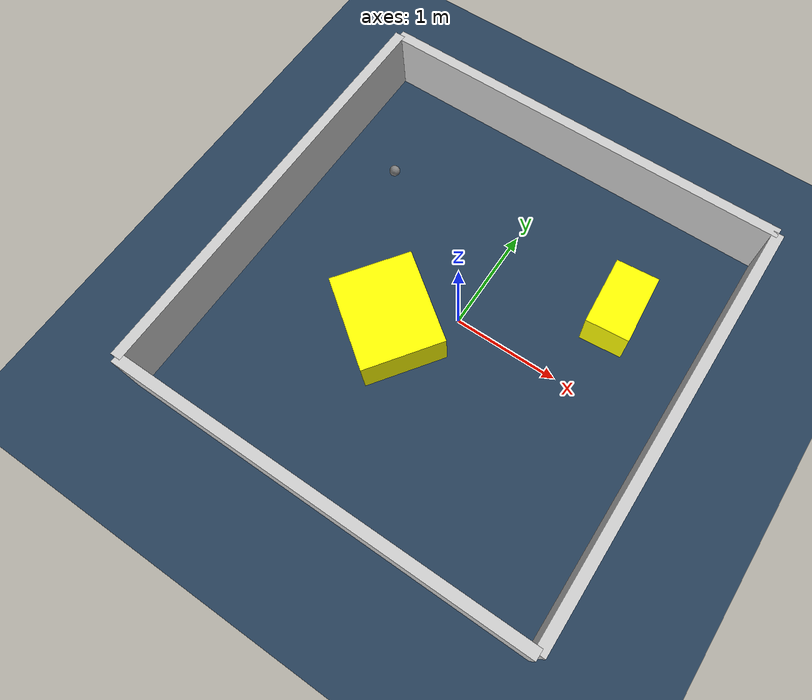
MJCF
<?xml version="1.0" ?>
<mujoco model="generated_environment">
  <option timestep="0.01" integrator="RK4" cone="elliptic"/>
  <default>
    <geom density="1"/>
  </default>
  <asset>
    <texture builtin="gradient" height="3072" rgb1="0.3 0.5 0.7" rgb2="0 0 0" type="skybox" width="512"/>
    <texture builtin="checker" height="300" mark="edge" markrgb="0.8 0.8 0.8" name="groundplane" rgb1="0.2 0.3 0.4" rgb2="0.1 0.2 0.3" type="2d" width="300"/>
    <material name="groundplane" reflectance="0.2" texrepeat="5 5" texture="groundplane" texuniform="true"/>
    <material name="robot" rgba="0.0 1.0 0.0 1"/>
  </asset>
  <worldbody>
    <light dir="0 0 -1" directional="true" pos="0 0 1.5"/>
    <geom condim="4" friction="1.0 0.005 0.001" material="groundplane" name="floor" size="0 0 0.05" type="plane"/>
    <body name="walls">
      <geom name="wall_1" condim="4" pos="-2.0 0.0 0.3" rgba="0.800000011920929 0.800000011920929 0.800000011920929 1.0" size="0.05 2.0 0.3" type="box"/>
      <geom name="wall_2" condim="4" pos="2.0 0.0 0.3" rgba="0.800000011920929 0.800000011920929 0.800000011920929 1.0" size="0.05 2.0 0.3" type="box"/>
      <geom name="wall_3" condim="4" pos="0.0 -2.0 0.3" rgba="0.800000011920929 0.800000011920929 0.800000011920929 1.0" size="2.0 0.05 0.3" type="box"/>
      <geom name="wall_4" condim="4" pos="0.0 2.0 0.3" rgba="0.800000011920929 0.800000011920929 0.800000011920929 1.0" size="2.0 0.05 0.3" type="box"/>
    </body>
    <body name="robot">
      <joint name="joint_x" type="slide" pos="0 0 0" axis="1 0 0"/>
      <joint name="joint_y" type="slide" pos="0 0 0" axis="0 1 0"/>
      <geom name="robot" type="sphere" pos="-1.3176965937563434 0.8897547335021385 0.2" size="0.05" mass="5." friction="1.0 0.005 0.0001" condim="4"/>
      <site name="sensor_ball"/>
    </body>
    <body name="obstacle_1_movable">
      <geom name="obstacle_1_movable" condim="4" pos="1.163150362962503 0.8062569004943059 0.2" euler="0 0 274.6734782820739" friction="1.0 0.005 0.001" rgba="1 1 0 1" size="0.3283822509722244 0.20109381328059076 0.2" type="box" mass="0.1"/>
      <joint type="free"/>
    </body>
    <body name="obstacle_2_movable">
      <geom name="obstacle_2_movable" condim="4" pos="-0.48070388235566175 -0.3885200800404496 0.2" euler="0 0 53.9847982360737" friction="1.0 0.005 0.001" rgba="1 1 0 1" size="0.3806081112565325 0.45329252150676413 0.2" type="box" mass="0.1"/>
      <joint type="free"/>
    </body>
  </worldbody>
  <actuator>
    <motor name="actuator_x" joint="joint_x" gear="1" ctrlrange="-1 1"/>
    <motor name="actuator_y" joint="joint_y" gear="1" ctrlrange="-1 1"/>
  </actuator>
</mujoco>
